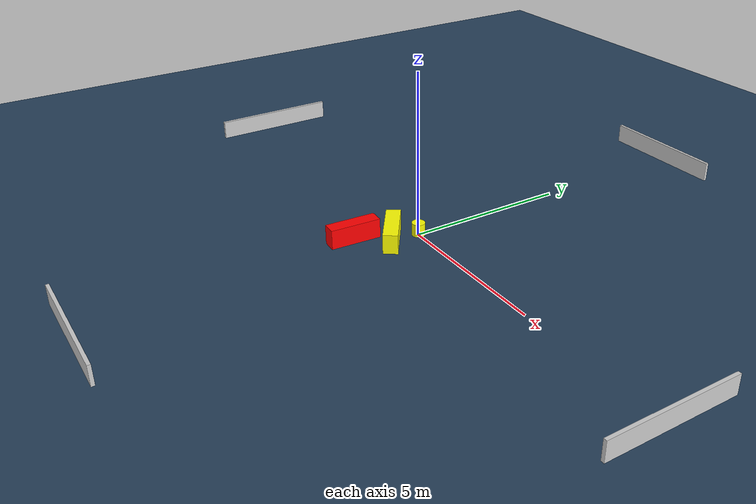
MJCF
<?xml version="1.0" ?>
<mujoco model="generated_environment">
  <option timestep="0.01" integrator="RK4" cone="elliptic"/>
  <default>
    <geom density="1"/>
  </default>
  <asset>
    <texture builtin="gradient" height="3072" name="skybox" rgb1="0.3 0.5 0.7" rgb2="0 0 0" type="skybox" width="512"/>
    <texture builtin="checker" height="300" name="groundplane" rgb1="0.2 0.3 0.4" rgb2="0.1 0.2 0.3" type="2d" width="300"/>
    <material name="groundplane" reflectance="0.2" texrepeat="5 5" texture="groundplane"/>
  </asset>
  <worldbody>
    <light dir="0 0 -1" directional="true" pos="0 0 1.5"/>
    <geom condim="3" friction="0.5 0.005 0.001" material="groundplane" name="floor" pos="0 0 0" size="0 0 0.05" type="plane"/>
    <body name="walls">
      <geom name="wall_1" condim="4" pos="-10.0 0.0 0.3" rgba="0.800000011920929 0.800000011920929 0.800000011920929 1.0" size="0.05 2.0 0.3" type="box"/>
      <geom name="wall_2" condim="4" pos="10.0 0.0 0.3" rgba="0.800000011920929 0.800000011920929 0.800000011920929 1.0" size="0.05 2.0 0.3" type="box"/>
      <geom name="wall_3" condim="4" pos="0.0 -10.0 0.3" rgba="0.800000011920929 0.800000011920929 0.800000011920929 1.0" size="2.0 0.05 0.3" type="box"/>
      <geom name="wall_4" condim="4" pos="0.0 10.0 0.3" rgba="0.800000011920929 0.800000011920929 0.800000011920929 1.0" size="2.0 0.05 0.3" type="box"/>
    </body>
    <body name="robot">
      <joint name="joint_x" type="slide" pos="0 0 0" axis="1 0 0"/>
      <joint name="joint_y" type="slide" pos="0 0 0" axis="0 1 0"/>
      <geom name="robot" type="cylinder" pos="0.0 0.0 0.2" size="0.2 0.2 0.0" mass="5.0" friction="1.0 0.005 0.0001" condim="4" rgba="1.0 1.0 0.0 1.0"/>
    </body>
    <body name="obstacle_1_movable">
      <geom name="obstacle_1_movable" condim="4" pos="-0.10814352470088463 -0.839665501747687 0.3" euler="0 0 145.46231317350933" friction="0.0 0.005 0.001" rgba="1.0 1.0 0.0 1.0" size="0.7926287443424997 0.2197120285470837 0.3" type="box" mass="0.1"/>
      <joint type="free"/>
    </body>
    <body name="obstacle_2_static">
      <geom name="obstacle_2_static" condim="4" pos="-0.7313065675919241 -1.7813794120036712 0.3" euler="0 0 176.8935976506405" friction="0.0 0.005 0.001" rgba="1.0 0.0 0.0 1.0" size="0.2136915945274901 0.7728276725030507 0.3" type="box"/>
    </body>
  </worldbody>
  <actuator>
    <motor name="actuator_x" joint="joint_x" gear="1" ctrlrange="-1 1"/>
    <motor name="actuator_y" joint="joint_y" gear="1" ctrlrange="-1 1"/>
  </actuator>
</mujoco>
